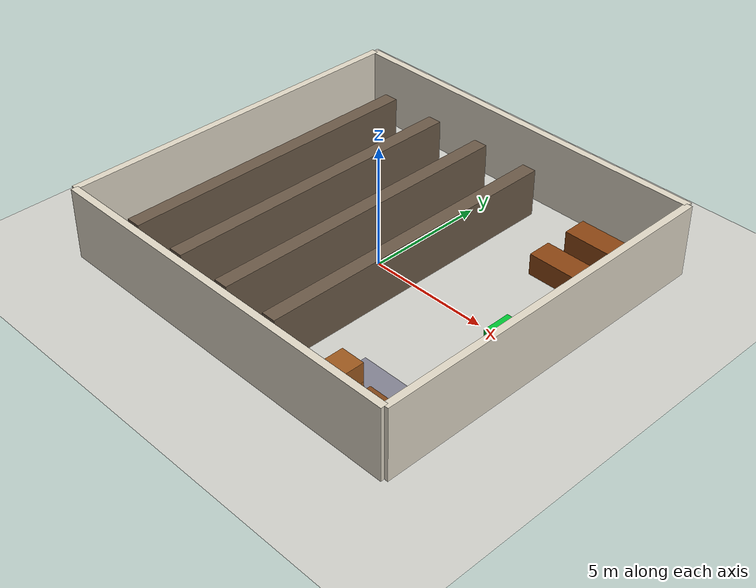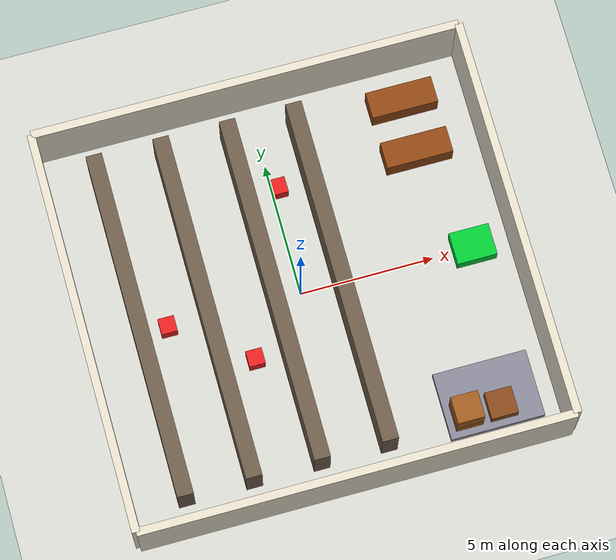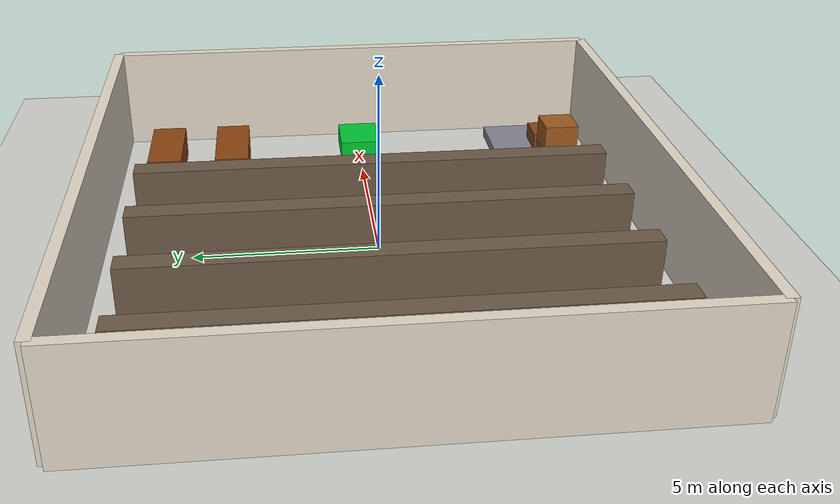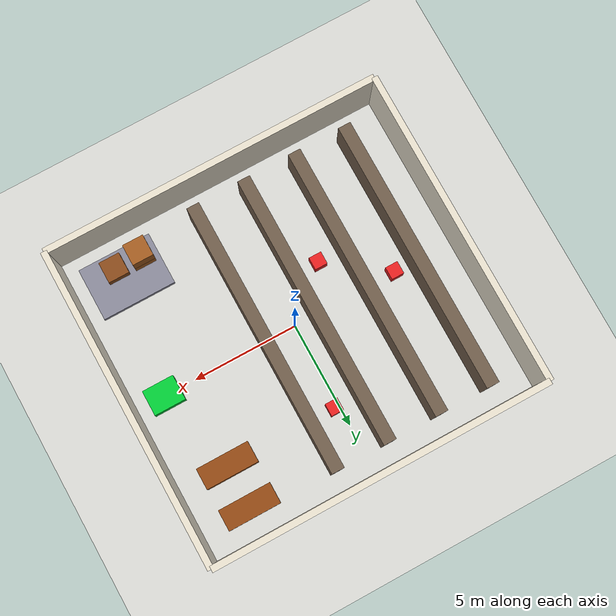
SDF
<?xml version="1.0" ?>
<sdf version="1.6">
  <world name="warehouse">

    <scene>
      <ambient>1.0 1.0 1.0 1</ambient>
      <background>0.7 0.75 0.8 1</background>
      <shadows>false</shadows>
    </scene>

    <light name="sun" type="directional">
      <cast_shadows>false</cast_shadows>
      <pose>0 0 10 0 0 0</pose>
      <diffuse>1.0 1.0 1.0 1</diffuse>
      <specular>0.5 0.5 0.5 1</specular>
      <direction>0 0 -1</direction>
    </light>

    <light name="point1" type="point">
      <pose>0 0 4 0 0 0</pose>
      <diffuse>1 1 1 1</diffuse>
      <specular>0.3 0.3 0.3 1</specular>
      <attenuation><range>20</range><constant>0.3</constant><linear>0.01</linear><quadratic>0.001</quadratic></attenuation>
    </light>

    <!-- GROUND -->
    <model name="ground_plane">
      <static>true</static>
      <link name="link">
        <collision name="collision">
          <geometry><plane><normal>0 0 1</normal><size>100 100</size></plane></geometry>
        </collision>
        <visual name="visual">
          <geometry><plane><normal>0 0 1</normal><size>100 100</size></plane></geometry>
          <material><ambient>0.82 0.82 0.80 1</ambient><diffuse>0.82 0.82 0.80 1</diffuse></material>
        </visual>
      </link>
    </model>

    <!-- OUTER WALLS (15x15m interior) -->
    <model name="wall_south">
      <static>true</static>
      <pose>0 -7.5 1.5 0 0 0</pose>
      <link name="link">
        <collision name="collision"><geometry><box><size>16 0.3 3</size></box></geometry></collision>
        <visual name="visual">
          <geometry><box><size>16 0.3 3</size></box></geometry>
          <material><ambient>0.88 0.85 0.78 1</ambient><diffuse>0.88 0.85 0.78 1</diffuse></material>
        </visual>
      </link>
    </model>

    <model name="wall_north">
      <static>true</static>
      <pose>0 7.5 1.5 0 0 0</pose>
      <link name="link">
        <collision name="collision"><geometry><box><size>16 0.3 3</size></box></geometry></collision>
        <visual name="visual">
          <geometry><box><size>16 0.3 3</size></box></geometry>
          <material><ambient>0.88 0.85 0.78 1</ambient><diffuse>0.88 0.85 0.78 1</diffuse></material>
        </visual>
      </link>
    </model>

    <model name="wall_west">
      <static>true</static>
      <pose>-8 0 1.5 0 0 0</pose>
      <link name="link">
        <collision name="collision"><geometry><box><size>0.3 15 3</size></box></geometry></collision>
        <visual name="visual">
          <geometry><box><size>0.3 15 3</size></box></geometry>
          <material><ambient>0.88 0.85 0.78 1</ambient><diffuse>0.88 0.85 0.78 1</diffuse></material>
        </visual>
      </link>
    </model>

    <model name="wall_east">
      <static>true</static>
      <pose>8 0 1.5 0 0 0</pose>
      <link name="link">
        <collision name="collision"><geometry><box><size>0.3 15 3</size></box></geometry></collision>
        <visual name="visual">
          <geometry><box><size>0.3 15 3</size></box></geometry>
          <material><ambient>0.88 0.85 0.78 1</ambient><diffuse>0.88 0.85 0.78 1</diffuse></material>
        </visual>
      </link>
    </model>

    <!-- SHELF COL 1 - solid wall -->
    <model name="shelf_col1_solid">
      <static>true</static>
      <pose>-6 0 1.0 0 0 0</pose>
      <link name="link">
        <collision name="collision"><geometry><box><size>0.6 13 2.0</size></box></geometry></collision>
        <visual name="visual">
          <geometry><box><size>0.6 13 2.0</size></box></geometry>
          <material><ambient>0.42 0.35 0.28 1</ambient><diffuse>0.42 0.35 0.28 1</diffuse></material>
        </visual>
      </link>
    </model>

    <!-- SHELF COL 2 - solid wall -->
    <model name="shelf_col2_solid">
      <static>true</static>
      <pose>-3.5 0 1.0 0 0 0</pose>
      <link name="link">
        <collision name="collision"><geometry><box><size>0.6 13 2.0</size></box></geometry></collision>
        <visual name="visual">
          <geometry><box><size>0.6 13 2.0</size></box></geometry>
          <material><ambient>0.42 0.35 0.28 1</ambient><diffuse>0.42 0.35 0.28 1</diffuse></material>
        </visual>
      </link>
    </model>

    <!-- SHELF COL 3 - solid wall -->
    <model name="shelf_col3_solid">
      <static>true</static>
      <pose>-1 0 1.0 0 0 0</pose>
      <link name="link">
        <collision name="collision"><geometry><box><size>0.6 13 2.0</size></box></geometry></collision>
        <visual name="visual">
          <geometry><box><size>0.6 13 2.0</size></box></geometry>
          <material><ambient>0.42 0.35 0.28 1</ambient><diffuse>0.42 0.35 0.28 1</diffuse></material>
        </visual>
      </link>
    </model>

    <!-- SHELF COL 4 - solid wall -->
    <model name="shelf_col4_solid">
      <static>true</static>
      <pose>1.5 0 1.0 0 0 0</pose>
      <link name="link">
        <collision name="collision"><geometry><box><size>0.6 13 2.0</size></box></geometry></collision>
        <visual name="visual">
          <geometry><box><size>0.6 13 2.0</size></box></geometry>
          <material><ambient>0.42 0.35 0.28 1</ambient><diffuse>0.42 0.35 0.28 1</diffuse></material>
        </visual>
      </link>
    </model>

    <!-- PACKING STATION (east side) -->

    <model name="packing_table_1">
      <static>true</static>
      <pose>5.5 4 0.45 0 0 0</pose>
      <link name="link">
        <collision name="collision"><geometry><box><size>2.5 1.0 0.9</size></box></geometry></collision>
        <visual name="visual">
          <geometry><box><size>2.5 1.0 0.9</size></box></geometry>
          <material><ambient>0.55 0.27 0.07 1</ambient><diffuse>0.55 0.27 0.07 1</diffuse></material>
        </visual>
      </link>
    </model>

    <model name="packing_table_2">
      <static>true</static>
      <pose>5.5 6 0.45 0 0 0</pose>
      <link name="link">
        <collision name="collision"><geometry><box><size>2.5 1.0 0.9</size></box></geometry></collision>
        <visual name="visual">
          <geometry><box><size>2.5 1.0 0.9</size></box></geometry>
          <material><ambient>0.55 0.27 0.07 1</ambient><diffuse>0.55 0.27 0.07 1</diffuse></material>
        </visual>
      </link>
    </model>

    <!-- LOADING DOCK (south-east) -->
    <model name="loading_dock_platform">
      <static>true</static>
      <pose>5.5 -5.5 0.15 0 0 0</pose>
      <link name="link">
        <collision name="collision"><geometry><box><size>3.5 2.5 0.3</size></box></geometry></collision>
        <visual name="visual">
          <geometry><box><size>3.5 2.5 0.3</size></box></geometry>
          <material><ambient>0.52 0.52 0.58 1</ambient><diffuse>0.52 0.52 0.58 1</diffuse></material>
        </visual>
      </link>
    </model>

    <model name="dock_crate_1"><static>true</static><pose>4.5 -6 0.4 0 0 0</pose><link name="link"><collision name="c"><geometry><box><size>1.0 1.0 0.8</size></box></geometry></collision><visual name="v"><geometry><box><size>1.0 1.0 0.8</size></box></geometry><material><ambient>0.62 0.35 0.12 1</ambient><diffuse>0.62 0.35 0.12 1</diffuse></material></visual></link></model>
    <model name="dock_crate_2"><static>true</static><pose>5.8 -6 0.4 0 0 0</pose><link name="link"><collision name="c"><geometry><box><size>1.0 1.0 0.8</size></box></geometry></collision><visual name="v"><geometry><box><size>1.0 1.0 0.8</size></box></geometry><material><ambient>0.52 0.28 0.10 1</ambient><diffuse>0.52 0.28 0.10 1</diffuse></material></visual></link></model>
    <model name="dock_crate_3"><static>true</static><pose>4.5 -6 1.2 0 0 0</pose><link name="link"><collision name="c"><geometry><box><size>1.0 1.0 0.8</size></box></geometry></collision><visual name="v"><geometry><box><size>1.0 1.0 0.8</size></box></geometry><material><ambient>0.62 0.35 0.12 1</ambient><diffuse>0.62 0.35 0.12 1</diffuse></material></visual></link></model>

    <!-- CHARGING STATION -->
    <model name="charging_station">
      <static>true</static>
      <pose>6.5 0 0.3 0 0 0</pose>
      <link name="link">
        <collision name="collision"><geometry><box><size>1.5 1.2 0.6</size></box></geometry></collision>
        <visual name="visual">
          <geometry><box><size>1.5 1.2 0.6</size></box></geometry>
          <material><ambient>0.0 0.78 0.2 1</ambient><diffuse>0.0 0.78 0.2 1</diffuse></material>
        </visual>
      </link>
    </model>

    <!-- OBSTACLES -->
    <model name="obstacle_1"><static>true</static><pose>-5 0 0.3 0 0 0</pose><link name="link"><collision name="c"><geometry><box><size>0.6 0.6 0.6</size></box></geometry></collision><visual name="v"><geometry><box><size>0.6 0.6 0.6</size></box></geometry><material><ambient>0.88 0.12 0.12 1</ambient><diffuse>0.88 0.12 0.12 1</diffuse></material></visual></link></model>
    <model name="obstacle_2"><static>true</static><pose>-2.25 -2 0.3 0 0 0</pose><link name="link"><collision name="c"><geometry><box><size>0.6 0.6 0.6</size></box></geometry></collision><visual name="v"><geometry><box><size>0.6 0.6 0.6</size></box></geometry><material><ambient>0.88 0.12 0.12 1</ambient><diffuse>0.88 0.12 0.12 1</diffuse></material></visual></link></model>
    <model name="obstacle_3"><static>true</static><pose>0.25 4 0.3 0 0 0</pose><link name="link"><collision name="c"><geometry><box><size>0.6 0.6 0.6</size></box></geometry></collision><visual name="v"><geometry><box><size>0.6 0.6 0.6</size></box></geometry><material><ambient>0.88 0.12 0.12 1</ambient><diffuse>0.88 0.12 0.12 1</diffuse></material></visual></link></model>

  </world>
</sdf>
